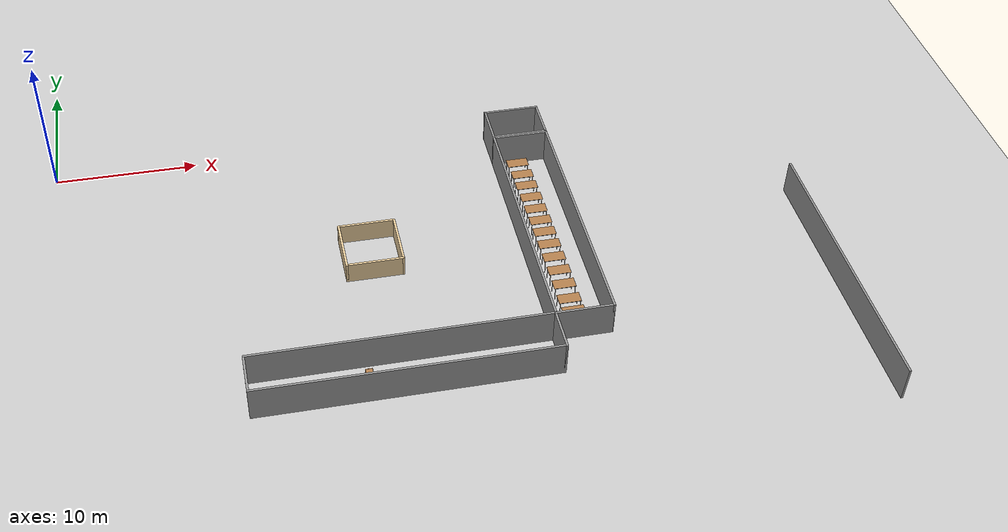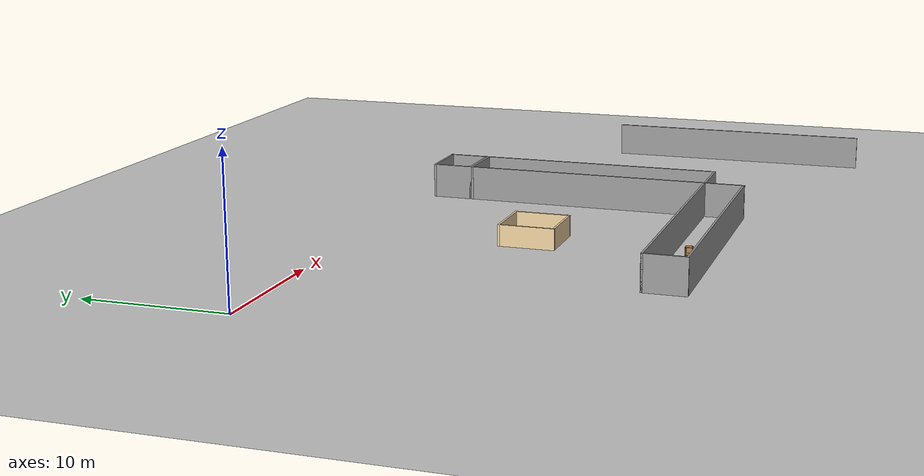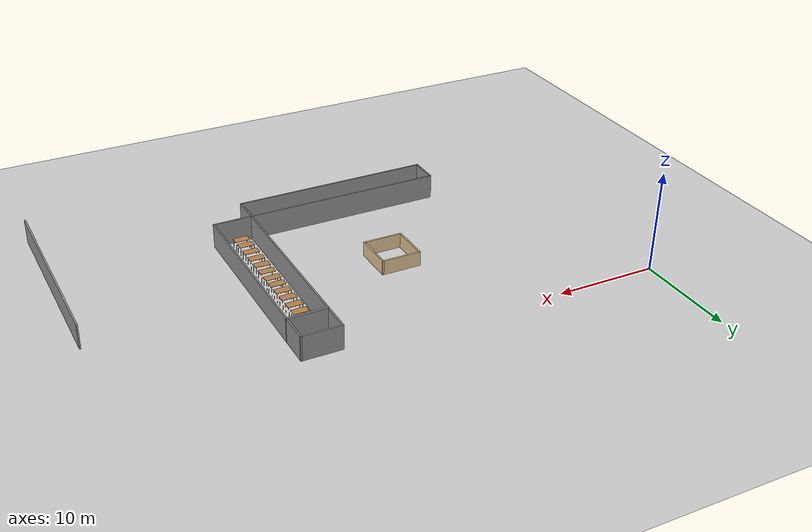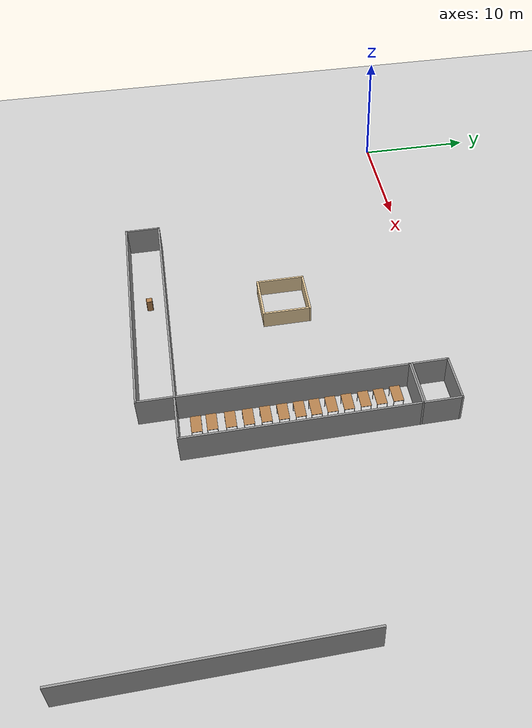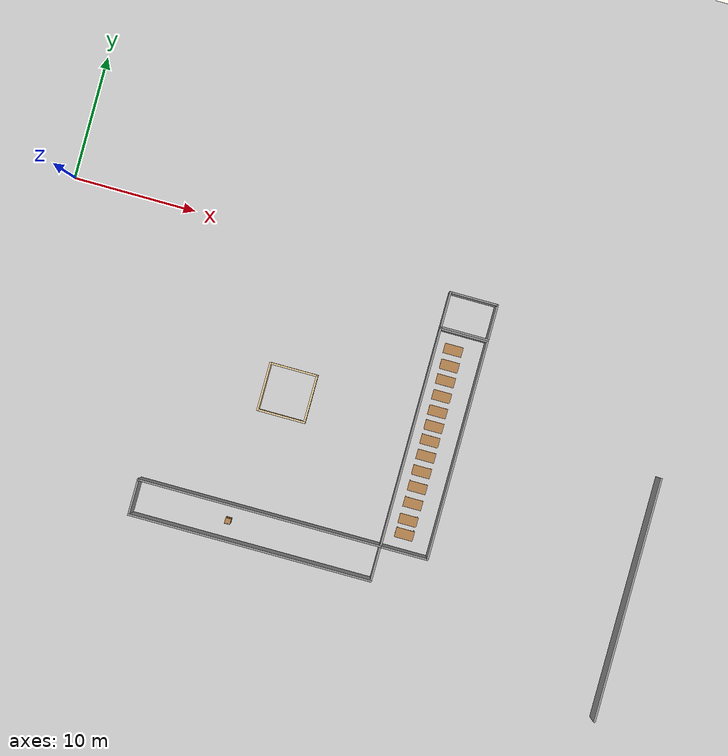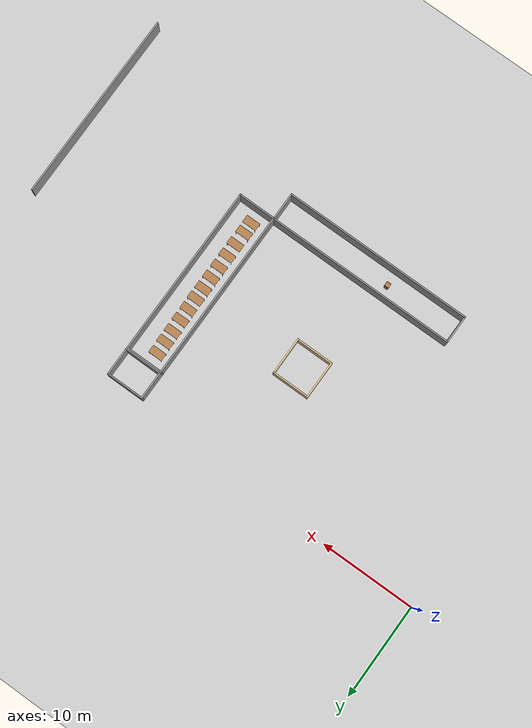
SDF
<sdf version="1.6">
 <world name="default">
  <model name="ground_plane">
   <static>1</static>
   <link name="link">
    <collision name="collision">
     <geometry><plane><normal>0 0 1</normal><size>105 105</size></plane></geometry>
     <surface>
      <contact><collide_bitmask>65535</collide_bitmask></contact>
      <friction><ode><mu>100</mu><mu2>50</mu2></ode></friction>
     </surface>
    </collision>
    <visual name="visual">
     <cast_shadows>0</cast_shadows>
     <geometry><plane><normal>0 0 1</normal><size>105 105</size></plane></geometry>
     <material>
      <script><uri>file://media/materials/scripts/gazebo.material</uri><name>Gazebo/Grey</name></script>
     </material>
    </visual>
   </link>
  </model>
  <model name="wall_v20m_3">
   <pose>51.4198 -20.719 0 0 -0 0</pose>
   <link name="Wall_35">
    <collision name="Wall_35_Collision">
     <geometry><box><size>20 0.15 2.5</size></box></geometry>
     <pose>0 0 1.25 0 -0 0</pose>
    </collision>
    <visual name="Wall_35_Visual">
     <pose>0 0 1.25 0 -0 0</pose>
     <geometry><box><size>20 0.15 2.5</size></box></geometry>
     <material>
      <script><uri>file://media/materials/scripts/gazebo.material</uri><name>Gazebo/Grey</name></script>
      <ambient>1 1 1 1</ambient>
     </material>
     <meta><layer>0</layer></meta>
    </visual>
    <pose>0 -0 0 0 -0 -1.5708</pose>
   </link>
   <static>1</static>
  </model>
  <model name="base3x20_3">
   <pose>21.5045 -23.229 0 0 -0 0</pose>
   <link name="Wall_16">
    <collision name="Wall_16_Collision">
     <geometry><box><size>3 0.15 2.5</size></box></geometry>
     <pose>0 0 1.25 0 -0 0</pose>
    </collision>
    <visual name="Wall_16_Visual">
     <pose>0 0 1.25 0 -0 0</pose>
     <geometry><box><size>3 0.15 2.5</size></box></geometry>
     <material>
      <script><uri>file://media/materials/scripts/gazebo.material</uri><name>Gazebo/Grey</name></script>
      <ambient>1 1 1 1</ambient>
     </material>
     <meta><layer>0</layer></meta>
    </visual>
    <pose>-9.925 -0 0 0 -0 -1.5708</pose>
   </link>
   <link name="Wall_17">
    <collision name="Wall_17_Collision">
     <geometry><box><size>20 0.15 2.5</size></box></geometry>
     <pose>0 0 1.25 0 -0 0</pose>
    </collision>
    <visual name="Wall_17_Visual">
     <pose>0 0 1.25 0 -0 0</pose>
     <geometry><box><size>20 0.15 2.5</size></box></geometry>
     <material>
      <script><uri>file://media/materials/scripts/gazebo.material</uri><name>Gazebo/Grey</name></script>
      <ambient>1 1 1 1</ambient>
     </material>
     <meta><layer>0</layer></meta>
    </visual>
    <pose>-0 -1.425 0 0 -0 0</pose>
   </link>
   <link name="Wall_18">
    <collision name="Wall_18_Collision">
     <geometry><box><size>3 0.15 2.5</size></box></geometry>
     <pose>0 0 1.25 0 -0 0</pose>
    </collision>
    <visual name="Wall_18_Visual">
     <pose>0 0 1.25 0 -0 0</pose>
     <geometry><box><size>3 0.15 2.5</size></box></geometry>
     <material>
      <script><uri>file://media/materials/scripts/gazebo.material</uri><name>Gazebo/Grey</name></script>
      <ambient>1 1 1 1</ambient>
     </material>
     <meta><layer>0</layer></meta>
    </visual>
    <pose>9.925 -0 0 0 -0 1.5708</pose>
   </link>
   <link name="Wall_19">
    <collision name="Wall_19_Collision">
     <geometry><box><size>20 0.15 2.5</size></box></geometry>
     <pose>0 0 1.25 0 -0 0</pose>
    </collision>
    <visual name="Wall_19_Visual">
     <pose>0 0 1.25 0 -0 0</pose>
     <geometry><box><size>20 0.15 2.5</size></box></geometry>
     <material>
      <script><uri>file://media/materials/scripts/gazebo.material</uri><name>Gazebo/Grey</name></script>
      <ambient>1 1 1 1</ambient>
     </material>
     <meta><layer>0</layer></meta>
    </visual>
    <pose>-0 1.425 0 0 -0 3.14159</pose>
   </link>
   <static>1</static>
  </model>
  <model name="base18x4_5">
   <pose>33.3746 -12.8976 0 0 -0 0</pose>
   <link name="Wall_6">
    <collision name="Wall_6_Collision">
     <geometry><box><size>18 0.15 2.5</size></box></geometry>
     <pose>0 0 1.25 0 -0 0</pose>
    </collision>
    <visual name="Wall_6_Visual">
     <pose>0 0 1.25 0 -0 0</pose>
     <geometry><box><size>18 0.15 2.5</size></box></geometry>
     <material>
      <script><uri>file://media/materials/scripts/gazebo.material</uri><name>Gazebo/Grey</name></script>
      <ambient>1 1 1 1</ambient>
     </material>
     <meta><layer>0</layer></meta>
    </visual>
    <pose>-1.925 0 0 0 -0 -1.5708</pose>
   </link>
   <link name="Wall_7">
    <collision name="Wall_7_Collision">
     <geometry><box><size>4 0.15 2.5</size></box></geometry>
     <pose>0 0 1.25 0 -0 0</pose>
    </collision>
    <visual name="Wall_7_Visual">
     <pose>0 0 1.25 0 -0 0</pose>
     <geometry><box><size>4 0.15 2.5</size></box></geometry>
     <material>
      <script><uri>file://media/materials/scripts/gazebo.material</uri><name>Gazebo/Grey</name></script>
      <ambient>1 1 1 1</ambient>
     </material>
     <meta><layer>0</layer></meta>
    </visual>
    <pose>0 -8.925 0 0 -0 0</pose>
   </link>
   <link name="Wall_8">
    <collision name="Wall_8_Collision">
     <geometry><box><size>18 0.15 2.5</size></box></geometry>
     <pose>0 0 1.25 0 -0 0</pose>
    </collision>
    <visual name="Wall_8_Visual">
     <pose>0 0 1.25 0 -0 0</pose>
     <geometry><box><size>18 0.15 2.5</size></box></geometry>
     <material>
      <script><uri>file://media/materials/scripts/gazebo.material</uri><name>Gazebo/Grey</name></script>
      <ambient>1 1 1 1</ambient>
     </material>
     <meta><layer>0</layer></meta>
    </visual>
    <pose>1.925 0 0 0 -0 1.5708</pose>
   </link>
   <link name="Wall_9">
    <collision name="Wall_9_Collision">
     <geometry><box><size>4 0.15 2.5</size></box></geometry>
     <pose>0 0 1.25 0 -0 0</pose>
    </collision>
    <visual name="Wall_9_Visual">
     <pose>0 0 1.25 0 -0 0</pose>
     <geometry><box><size>4 0.15 2.5</size></box></geometry>
     <material>
      <script><uri>file://media/materials/scripts/gazebo.material</uri><name>Gazebo/Grey</name></script>
      <ambient>1 1 1 1</ambient>
     </material>
     <meta><layer>0</layer></meta>
    </visual>
    <pose>0 8.925 0 0 -0 3.14159</pose>
   </link>
   <static>1</static>
  </model>
  <model name="base3x4_74">
   <pose>33.377 -2.40049 0 0 -0 0</pose>
   <link name="Wall_18">
    <collision name="Wall_18_Collision">
     <geometry><box><size>3 0.15 2.5</size></box></geometry>
     <pose>0 0 1.25 0 -0 0</pose>
    </collision>
    <visual name="Wall_18_Visual">
     <pose>0 0 1.25 0 -0 0</pose>
     <geometry><box><size>3 0.15 2.5</size></box></geometry>
     <material>
      <script><uri>file://media/materials/scripts/gazebo.material</uri><name>Gazebo/Grey</name></script>
      <ambient>1 1 1 1</ambient>
     </material>
     <meta><layer>0</layer></meta>
    </visual>
    <pose>-1.925 -0 0 0 -0 -1.5708</pose>
   </link>
   <link name="Wall_19">
    <collision name="Wall_19_Collision">
     <geometry><box><size>4 0.15 2.5</size></box></geometry>
     <pose>0 0 1.25 0 -0 0</pose>
    </collision>
    <visual name="Wall_19_Visual">
     <pose>0 0 1.25 0 -0 0</pose>
     <geometry><box><size>4 0.15 2.5</size></box></geometry>
     <material>
      <script><uri>file://media/materials/scripts/gazebo.material</uri><name>Gazebo/Grey</name></script>
      <ambient>1 1 1 1</ambient>
     </material>
     <meta><layer>0</layer></meta>
    </visual>
    <pose>-0 -1.425 0 0 -0 0</pose>
   </link>
   <link name="Wall_20">
    <collision name="Wall_20_Collision">
     <geometry><box><size>3 0.15 2.5</size></box></geometry>
     <pose>0 0 1.25 0 -0 0</pose>
    </collision>
    <visual name="Wall_20_Visual">
     <pose>0 0 1.25 0 -0 0</pose>
     <geometry><box><size>3 0.15 2.5</size></box></geometry>
     <material>
      <script><uri>file://media/materials/scripts/gazebo.material</uri><name>Gazebo/Grey</name></script>
      <ambient>1 1 1 1</ambient>
     </material>
     <meta><layer>0</layer></meta>
    </visual>
    <pose>1.925 -0 0 0 -0 1.5708</pose>
   </link>
   <link name="Wall_21">
    <collision name="Wall_21_Collision">
     <geometry><box><size>4 0.15 2.5</size></box></geometry>
     <pose>0 0 1.25 0 -0 0</pose>
    </collision>
    <visual name="Wall_21_Visual">
     <pose>0 0 1.25 0 -0 0</pose>
     <geometry><box><size>4 0.15 2.5</size></box></geometry>
     <material>
      <script><uri>file://media/materials/scripts/gazebo.material</uri><name>Gazebo/Grey</name></script>
      <ambient>1 1 1 1</ambient>
     </material>
     <meta><layer>0</layer></meta>
    </visual>
    <pose>-0 1.425 0 0 -0 3.14159</pose>
   </link>
   <static>1</static>
  </model>
  <model name="table">
   <static>1</static>
   <link name="link">
    <collision name="surface">
     <pose>0 0 1 0 -0 0</pose>
     <geometry><box><size>1.5 0.8 0.03</size></box></geometry>
     <surface><friction><ode><mu>0.6</mu><mu2>0.6</mu2></ode></friction></surface>
    </collision>
    <visual name="visual1">
     <pose>0 0 1 0 -0 0</pose>
     <geometry><box><size>1.5 0.8 0.03</size></box></geometry>
     <material>
      <script><uri>file://media/materials/scripts/gazebo.material</uri><name>Gazebo/Wood</name></script>
     </material>
    </visual>
    <collision name="front_left_leg">
     <pose>0.68 0.38 0.5 0 -0 0</pose>
     <geometry><cylinder><radius>0.02</radius><length>1</length></cylinder></geometry>
    </collision>
    <visual name="front_left_leg">
     <pose>0.68 0.38 0.5 0 -0 0</pose>
     <geometry><cylinder><radius>0.02</radius><length>1</length></cylinder></geometry>
     <material>
      <script><uri>file://media/materials/scripts/gazebo.material</uri><name>Gazebo/Grey</name></script>
     </material>
    </visual>
    <collision name="front_right_leg">
     <pose>0.68 -0.38 0.5 0 -0 0</pose>
     <geometry><cylinder><radius>0.02</radius><length>1</length></cylinder></geometry>
    </collision>
    <visual name="front_right_leg">
     <pose>0.68 -0.38 0.5 0 -0 0</pose>
     <geometry><cylinder><radius>0.02</radius><length>1</length></cylinder></geometry>
     <material>
      <script><uri>file://media/materials/scripts/gazebo.material</uri><name>Gazebo/Grey</name></script>
     </material>
    </visual>
    <collision name="back_right_leg">
     <pose>-0.68 -0.38 0.5 0 -0 0</pose>
     <geometry><cylinder><radius>0.02</radius><length>1</length></cylinder></geometry>
    </collision>
    <visual name="back_right_leg">
     <pose>-0.68 -0.38 0.5 0 -0 0</pose>
     <geometry><cylinder><radius>0.02</radius><length>1</length></cylinder></geometry>
     <material>
      <script><uri>file://media/materials/scripts/gazebo.material</uri><name>Gazebo/Grey</name></script>
     </material>
    </visual>
    <collision name="back_left_leg">
     <pose>-0.68 0.38 0.5 0 -0 0</pose>
     <geometry><cylinder><radius>0.02</radius><length>1</length></cylinder></geometry>
    </collision>
    <visual name="back_left_leg">
     <pose>-0.68 0.38 0.5 0 -0 0</pose>
     <geometry><cylinder><radius>0.02</radius><length>1</length></cylinder></geometry>
     <material>
      <script><uri>file://media/materials/scripts/gazebo.material</uri><name>Gazebo/Grey</name></script>
     </material>
    </visual>
   </link>
   <pose>33.0718 -20.4788 0 0 -0 0</pose>
  </model>
  <model name="table_0">
   <static>1</static>
   <link name="link">
    <collision name="surface">
     <pose>0 0 1 0 -0 0</pose>
     <geometry><box><size>1.5 0.8 0.03</size></box></geometry>
     <surface><friction><ode><mu>0.6</mu><mu2>0.6</mu2></ode></friction></surface>
    </collision>
    <visual name="visual1">
     <pose>0 0 1 0 -0 0</pose>
     <geometry><box><size>1.5 0.8 0.03</size></box></geometry>
     <material>
      <script><uri>file://media/materials/scripts/gazebo.material</uri><name>Gazebo/Wood</name></script>
     </material>
    </visual>
    <collision name="front_left_leg">
     <pose>0.68 0.38 0.5 0 -0 0</pose>
     <geometry><cylinder><radius>0.02</radius><length>1</length></cylinder></geometry>
    </collision>
    <visual name="front_left_leg">
     <pose>0.68 0.38 0.5 0 -0 0</pose>
     <geometry><cylinder><radius>0.02</radius><length>1</length></cylinder></geometry>
     <material>
      <script><uri>file://media/materials/scripts/gazebo.material</uri><name>Gazebo/Grey</name></script>
     </material>
    </visual>
    <collision name="front_right_leg">
     <pose>0.68 -0.38 0.5 0 -0 0</pose>
     <geometry><cylinder><radius>0.02</radius><length>1</length></cylinder></geometry>
    </collision>
    <visual name="front_right_leg">
     <pose>0.68 -0.38 0.5 0 -0 0</pose>
     <geometry><cylinder><radius>0.02</radius><length>1</length></cylinder></geometry>
     <material>
      <script><uri>file://media/materials/scripts/gazebo.material</uri><name>Gazebo/Grey</name></script>
     </material>
    </visual>
    <collision name="back_right_leg">
     <pose>-0.68 -0.38 0.5 0 -0 0</pose>
     <geometry><cylinder><radius>0.02</radius><length>1</length></cylinder></geometry>
    </collision>
    <visual name="back_right_leg">
     <pose>-0.68 -0.38 0.5 0 -0 0</pose>
     <geometry><cylinder><radius>0.02</radius><length>1</length></cylinder></geometry>
     <material>
      <script><uri>file://media/materials/scripts/gazebo.material</uri><name>Gazebo/Grey</name></script>
     </material>
    </visual>
    <collision name="back_left_leg">
     <pose>-0.68 0.38 0.5 0 -0 0</pose>
     <geometry><cylinder><radius>0.02</radius><length>1</length></cylinder></geometry>
    </collision>
    <visual name="back_left_leg">
     <pose>-0.68 0.38 0.5 0 -0 0</pose>
     <geometry><cylinder><radius>0.02</radius><length>1</length></cylinder></geometry>
     <material>
      <script><uri>file://media/materials/scripts/gazebo.material</uri><name>Gazebo/Grey</name></script>
     </material>
    </visual>
   </link>
   <pose>33.0586 -19.3271 0 0 -0 0</pose>
  </model>
  <model name="table_1">
   <static>1</static>
   <link name="link">
    <collision name="surface">
     <pose>0 0 1 0 -0 0</pose>
     <geometry><box><size>1.5 0.8 0.03</size></box></geometry>
     <surface><friction><ode><mu>0.6</mu><mu2>0.6</mu2></ode></friction></surface>
    </collision>
    <visual name="visual1">
     <pose>0 0 1 0 -0 0</pose>
     <geometry><box><size>1.5 0.8 0.03</size></box></geometry>
     <material>
      <script><uri>file://media/materials/scripts/gazebo.material</uri><name>Gazebo/Wood</name></script>
     </material>
    </visual>
    <collision name="front_left_leg">
     <pose>0.68 0.38 0.5 0 -0 0</pose>
     <geometry><cylinder><radius>0.02</radius><length>1</length></cylinder></geometry>
    </collision>
    <visual name="front_left_leg">
     <pose>0.68 0.38 0.5 0 -0 0</pose>
     <geometry><cylinder><radius>0.02</radius><length>1</length></cylinder></geometry>
     <material>
      <script><uri>file://media/materials/scripts/gazebo.material</uri><name>Gazebo/Grey</name></script>
     </material>
    </visual>
    <collision name="front_right_leg">
     <pose>0.68 -0.38 0.5 0 -0 0</pose>
     <geometry><cylinder><radius>0.02</radius><length>1</length></cylinder></geometry>
    </collision>
    <visual name="front_right_leg">
     <pose>0.68 -0.38 0.5 0 -0 0</pose>
     <geometry><cylinder><radius>0.02</radius><length>1</length></cylinder></geometry>
     <material>
      <script><uri>file://media/materials/scripts/gazebo.material</uri><name>Gazebo/Grey</name></script>
     </material>
    </visual>
    <collision name="back_right_leg">
     <pose>-0.68 -0.38 0.5 0 -0 0</pose>
     <geometry><cylinder><radius>0.02</radius><length>1</length></cylinder></geometry>
    </collision>
    <visual name="back_right_leg">
     <pose>-0.68 -0.38 0.5 0 -0 0</pose>
     <geometry><cylinder><radius>0.02</radius><length>1</length></cylinder></geometry>
     <material>
      <script><uri>file://media/materials/scripts/gazebo.material</uri><name>Gazebo/Grey</name></script>
     </material>
    </visual>
    <collision name="back_left_leg">
     <pose>-0.68 0.38 0.5 0 -0 0</pose>
     <geometry><cylinder><radius>0.02</radius><length>1</length></cylinder></geometry>
    </collision>
    <visual name="back_left_leg">
     <pose>-0.68 0.38 0.5 0 -0 0</pose>
     <geometry><cylinder><radius>0.02</radius><length>1</length></cylinder></geometry>
     <material>
      <script><uri>file://media/materials/scripts/gazebo.material</uri><name>Gazebo/Grey</name></script>
     </material>
    </visual>
   </link>
   <pose>33.0783 -17.9476 0 0 -0 0</pose>
  </model>
  <model name="table_2">
   <static>1</static>
   <link name="link">
    <collision name="surface">
     <pose>0 0 1 0 -0 0</pose>
     <geometry><box><size>1.5 0.8 0.03</size></box></geometry>
     <surface><friction><ode><mu>0.6</mu><mu2>0.6</mu2></ode></friction></surface>
    </collision>
    <visual name="visual1">
     <pose>0 0 1 0 -0 0</pose>
     <geometry><box><size>1.5 0.8 0.03</size></box></geometry>
     <material>
      <script><uri>file://media/materials/scripts/gazebo.material</uri><name>Gazebo/Wood</name></script>
     </material>
    </visual>
    <collision name="front_left_leg">
     <pose>0.68 0.38 0.5 0 -0 0</pose>
     <geometry><cylinder><radius>0.02</radius><length>1</length></cylinder></geometry>
    </collision>
    <visual name="front_left_leg">
     <pose>0.68 0.38 0.5 0 -0 0</pose>
     <geometry><cylinder><radius>0.02</radius><length>1</length></cylinder></geometry>
     <material>
      <script><uri>file://media/materials/scripts/gazebo.material</uri><name>Gazebo/Grey</name></script>
     </material>
    </visual>
    <collision name="front_right_leg">
     <pose>0.68 -0.38 0.5 0 -0 0</pose>
     <geometry><cylinder><radius>0.02</radius><length>1</length></cylinder></geometry>
    </collision>
    <visual name="front_right_leg">
     <pose>0.68 -0.38 0.5 0 -0 0</pose>
     <geometry><cylinder><radius>0.02</radius><length>1</length></cylinder></geometry>
     <material>
      <script><uri>file://media/materials/scripts/gazebo.material</uri><name>Gazebo/Grey</name></script>
     </material>
    </visual>
    <collision name="back_right_leg">
     <pose>-0.68 -0.38 0.5 0 -0 0</pose>
     <geometry><cylinder><radius>0.02</radius><length>1</length></cylinder></geometry>
    </collision>
    <visual name="back_right_leg">
     <pose>-0.68 -0.38 0.5 0 -0 0</pose>
     <geometry><cylinder><radius>0.02</radius><length>1</length></cylinder></geometry>
     <material>
      <script><uri>file://media/materials/scripts/gazebo.material</uri><name>Gazebo/Grey</name></script>
     </material>
    </visual>
    <collision name="back_left_leg">
     <pose>-0.68 0.38 0.5 0 -0 0</pose>
     <geometry><cylinder><radius>0.02</radius><length>1</length></cylinder></geometry>
    </collision>
    <visual name="back_left_leg">
     <pose>-0.68 0.38 0.5 0 -0 0</pose>
     <geometry><cylinder><radius>0.02</radius><length>1</length></cylinder></geometry>
     <material>
      <script><uri>file://media/materials/scripts/gazebo.material</uri><name>Gazebo/Grey</name></script>
     </material>
    </visual>
   </link>
   <pose>33.0811 -16.621 0 0 -0 0</pose>
  </model>
  <model name="table_3">
   <static>1</static>
   <link name="link">
    <collision name="surface">
     <pose>0 0 1 0 -0 0</pose>
     <geometry><box><size>1.5 0.8 0.03</size></box></geometry>
     <surface><friction><ode><mu>0.6</mu><mu2>0.6</mu2></ode></friction></surface>
    </collision>
    <visual name="visual1">
     <pose>0 0 1 0 -0 0</pose>
     <geometry><box><size>1.5 0.8 0.03</size></box></geometry>
     <material>
      <script><uri>file://media/materials/scripts/gazebo.material</uri><name>Gazebo/Wood</name></script>
     </material>
    </visual>
    <collision name="front_left_leg">
     <pose>0.68 0.38 0.5 0 -0 0</pose>
     <geometry><cylinder><radius>0.02</radius><length>1</length></cylinder></geometry>
    </collision>
    <visual name="front_left_leg">
     <pose>0.68 0.38 0.5 0 -0 0</pose>
     <geometry><cylinder><radius>0.02</radius><length>1</length></cylinder></geometry>
     <material>
      <script><uri>file://media/materials/scripts/gazebo.material</uri><name>Gazebo/Grey</name></script>
     </material>
    </visual>
    <collision name="front_right_leg">
     <pose>0.68 -0.38 0.5 0 -0 0</pose>
     <geometry><cylinder><radius>0.02</radius><length>1</length></cylinder></geometry>
    </collision>
    <visual name="front_right_leg">
     <pose>0.68 -0.38 0.5 0 -0 0</pose>
     <geometry><cylinder><radius>0.02</radius><length>1</length></cylinder></geometry>
     <material>
      <script><uri>file://media/materials/scripts/gazebo.material</uri><name>Gazebo/Grey</name></script>
     </material>
    </visual>
    <collision name="back_right_leg">
     <pose>-0.68 -0.38 0.5 0 -0 0</pose>
     <geometry><cylinder><radius>0.02</radius><length>1</length></cylinder></geometry>
    </collision>
    <visual name="back_right_leg">
     <pose>-0.68 -0.38 0.5 0 -0 0</pose>
     <geometry><cylinder><radius>0.02</radius><length>1</length></cylinder></geometry>
     <material>
      <script><uri>file://media/materials/scripts/gazebo.material</uri><name>Gazebo/Grey</name></script>
     </material>
    </visual>
    <collision name="back_left_leg">
     <pose>-0.68 0.38 0.5 0 -0 0</pose>
     <geometry><cylinder><radius>0.02</radius><length>1</length></cylinder></geometry>
    </collision>
    <visual name="back_left_leg">
     <pose>-0.68 0.38 0.5 0 -0 0</pose>
     <geometry><cylinder><radius>0.02</radius><length>1</length></cylinder></geometry>
     <material>
      <script><uri>file://media/materials/scripts/gazebo.material</uri><name>Gazebo/Grey</name></script>
     </material>
    </visual>
   </link>
   <pose>33.0661 -15.3115 0 0 -0 0</pose>
  </model>
  <model name="table_4">
   <static>1</static>
   <link name="link">
    <collision name="surface">
     <pose>0 0 1 0 -0 0</pose>
     <geometry><box><size>1.5 0.8 0.03</size></box></geometry>
     <surface><friction><ode><mu>0.6</mu><mu2>0.6</mu2></ode></friction></surface>
    </collision>
    <visual name="visual1">
     <pose>0 0 1 0 -0 0</pose>
     <geometry><box><size>1.5 0.8 0.03</size></box></geometry>
     <material>
      <script><uri>file://media/materials/scripts/gazebo.material</uri><name>Gazebo/Wood</name></script>
     </material>
    </visual>
    <collision name="front_left_leg">
     <pose>0.68 0.38 0.5 0 -0 0</pose>
     <geometry><cylinder><radius>0.02</radius><length>1</length></cylinder></geometry>
    </collision>
    <visual name="front_left_leg">
     <pose>0.68 0.38 0.5 0 -0 0</pose>
     <geometry><cylinder><radius>0.02</radius><length>1</length></cylinder></geometry>
     <material>
      <script><uri>file://media/materials/scripts/gazebo.material</uri><name>Gazebo/Grey</name></script>
     </material>
    </visual>
    <collision name="front_right_leg">
     <pose>0.68 -0.38 0.5 0 -0 0</pose>
     <geometry><cylinder><radius>0.02</radius><length>1</length></cylinder></geometry>
    </collision>
    <visual name="front_right_leg">
     <pose>0.68 -0.38 0.5 0 -0 0</pose>
     <geometry><cylinder><radius>0.02</radius><length>1</length></cylinder></geometry>
     <material>
      <script><uri>file://media/materials/scripts/gazebo.material</uri><name>Gazebo/Grey</name></script>
     </material>
    </visual>
    <collision name="back_right_leg">
     <pose>-0.68 -0.38 0.5 0 -0 0</pose>
     <geometry><cylinder><radius>0.02</radius><length>1</length></cylinder></geometry>
    </collision>
    <visual name="back_right_leg">
     <pose>-0.68 -0.38 0.5 0 -0 0</pose>
     <geometry><cylinder><radius>0.02</radius><length>1</length></cylinder></geometry>
     <material>
      <script><uri>file://media/materials/scripts/gazebo.material</uri><name>Gazebo/Grey</name></script>
     </material>
    </visual>
    <collision name="back_left_leg">
     <pose>-0.68 0.38 0.5 0 -0 0</pose>
     <geometry><cylinder><radius>0.02</radius><length>1</length></cylinder></geometry>
    </collision>
    <visual name="back_left_leg">
     <pose>-0.68 0.38 0.5 0 -0 0</pose>
     <geometry><cylinder><radius>0.02</radius><length>1</length></cylinder></geometry>
     <material>
      <script><uri>file://media/materials/scripts/gazebo.material</uri><name>Gazebo/Grey</name></script>
     </material>
    </visual>
   </link>
   <pose>33.068 -14.0197 0 0 -0 0</pose>
  </model>
  <model name="table_5">
   <static>1</static>
   <link name="link">
    <collision name="surface">
     <pose>0 0 1 0 -0 0</pose>
     <geometry><box><size>1.5 0.8 0.03</size></box></geometry>
     <surface><friction><ode><mu>0.6</mu><mu2>0.6</mu2></ode></friction></surface>
    </collision>
    <visual name="visual1">
     <pose>0 0 1 0 -0 0</pose>
     <geometry><box><size>1.5 0.8 0.03</size></box></geometry>
     <material>
      <script><uri>file://media/materials/scripts/gazebo.material</uri><name>Gazebo/Wood</name></script>
     </material>
    </visual>
    <collision name="front_left_leg">
     <pose>0.68 0.38 0.5 0 -0 0</pose>
     <geometry><cylinder><radius>0.02</radius><length>1</length></cylinder></geometry>
    </collision>
    <visual name="front_left_leg">
     <pose>0.68 0.38 0.5 0 -0 0</pose>
     <geometry><cylinder><radius>0.02</radius><length>1</length></cylinder></geometry>
     <material>
      <script><uri>file://media/materials/scripts/gazebo.material</uri><name>Gazebo/Grey</name></script>
     </material>
    </visual>
    <collision name="front_right_leg">
     <pose>0.68 -0.38 0.5 0 -0 0</pose>
     <geometry><cylinder><radius>0.02</radius><length>1</length></cylinder></geometry>
    </collision>
    <visual name="front_right_leg">
     <pose>0.68 -0.38 0.5 0 -0 0</pose>
     <geometry><cylinder><radius>0.02</radius><length>1</length></cylinder></geometry>
     <material>
      <script><uri>file://media/materials/scripts/gazebo.material</uri><name>Gazebo/Grey</name></script>
     </material>
    </visual>
    <collision name="back_right_leg">
     <pose>-0.68 -0.38 0.5 0 -0 0</pose>
     <geometry><cylinder><radius>0.02</radius><length>1</length></cylinder></geometry>
    </collision>
    <visual name="back_right_leg">
     <pose>-0.68 -0.38 0.5 0 -0 0</pose>
     <geometry><cylinder><radius>0.02</radius><length>1</length></cylinder></geometry>
     <material>
      <script><uri>file://media/materials/scripts/gazebo.material</uri><name>Gazebo/Grey</name></script>
     </material>
    </visual>
    <collision name="back_left_leg">
     <pose>-0.68 0.38 0.5 0 -0 0</pose>
     <geometry><cylinder><radius>0.02</radius><length>1</length></cylinder></geometry>
    </collision>
    <visual name="back_left_leg">
     <pose>-0.68 0.38 0.5 0 -0 0</pose>
     <geometry><cylinder><radius>0.02</radius><length>1</length></cylinder></geometry>
     <material>
      <script><uri>file://media/materials/scripts/gazebo.material</uri><name>Gazebo/Grey</name></script>
     </material>
    </visual>
   </link>
   <pose>33.0548 -12.7631 0 0 -0 0</pose>
  </model>
  <model name="table_6">
   <static>1</static>
   <link name="link">
    <collision name="surface">
     <pose>0 0 1 0 -0 0</pose>
     <geometry><box><size>1.5 0.8 0.03</size></box></geometry>
     <surface><friction><ode><mu>0.6</mu><mu2>0.6</mu2></ode></friction></surface>
    </collision>
    <visual name="visual1">
     <pose>0 0 1 0 -0 0</pose>
     <geometry><box><size>1.5 0.8 0.03</size></box></geometry>
     <material>
      <script><uri>file://media/materials/scripts/gazebo.material</uri><name>Gazebo/Wood</name></script>
     </material>
    </visual>
    <collision name="front_left_leg">
     <pose>0.68 0.38 0.5 0 -0 0</pose>
     <geometry><cylinder><radius>0.02</radius><length>1</length></cylinder></geometry>
    </collision>
    <visual name="front_left_leg">
     <pose>0.68 0.38 0.5 0 -0 0</pose>
     <geometry><cylinder><radius>0.02</radius><length>1</length></cylinder></geometry>
     <material>
      <script><uri>file://media/materials/scripts/gazebo.material</uri><name>Gazebo/Grey</name></script>
     </material>
    </visual>
    <collision name="front_right_leg">
     <pose>0.68 -0.38 0.5 0 -0 0</pose>
     <geometry><cylinder><radius>0.02</radius><length>1</length></cylinder></geometry>
    </collision>
    <visual name="front_right_leg">
     <pose>0.68 -0.38 0.5 0 -0 0</pose>
     <geometry><cylinder><radius>0.02</radius><length>1</length></cylinder></geometry>
     <material>
      <script><uri>file://media/materials/scripts/gazebo.material</uri><name>Gazebo/Grey</name></script>
     </material>
    </visual>
    <collision name="back_right_leg">
     <pose>-0.68 -0.38 0.5 0 -0 0</pose>
     <geometry><cylinder><radius>0.02</radius><length>1</length></cylinder></geometry>
    </collision>
    <visual name="back_right_leg">
     <pose>-0.68 -0.38 0.5 0 -0 0</pose>
     <geometry><cylinder><radius>0.02</radius><length>1</length></cylinder></geometry>
     <material>
      <script><uri>file://media/materials/scripts/gazebo.material</uri><name>Gazebo/Grey</name></script>
     </material>
    </visual>
    <collision name="back_left_leg">
     <pose>-0.68 0.38 0.5 0 -0 0</pose>
     <geometry><cylinder><radius>0.02</radius><length>1</length></cylinder></geometry>
    </collision>
    <visual name="back_left_leg">
     <pose>-0.68 0.38 0.5 0 -0 0</pose>
     <geometry><cylinder><radius>0.02</radius><length>1</length></cylinder></geometry>
     <material>
      <script><uri>file://media/materials/scripts/gazebo.material</uri><name>Gazebo/Grey</name></script>
     </material>
    </visual>
   </link>
   <pose>33.0586 -11.5759 0 0 -0 0</pose>
  </model>
  <model name="table_7">
   <static>1</static>
   <link name="link">
    <collision name="surface">
     <pose>0 0 1 0 -0 0</pose>
     <geometry><box><size>1.5 0.8 0.03</size></box></geometry>
     <surface><friction><ode><mu>0.6</mu><mu2>0.6</mu2></ode></friction></surface>
    </collision>
    <visual name="visual1">
     <pose>0 0 1 0 -0 0</pose>
     <geometry><box><size>1.5 0.8 0.03</size></box></geometry>
     <material>
      <script><uri>file://media/materials/scripts/gazebo.material</uri><name>Gazebo/Wood</name></script>
     </material>
    </visual>
    <collision name="front_left_leg">
     <pose>0.68 0.38 0.5 0 -0 0</pose>
     <geometry><cylinder><radius>0.02</radius><length>1</length></cylinder></geometry>
    </collision>
    <visual name="front_left_leg">
     <pose>0.68 0.38 0.5 0 -0 0</pose>
     <geometry><cylinder><radius>0.02</radius><length>1</length></cylinder></geometry>
     <material>
      <script><uri>file://media/materials/scripts/gazebo.material</uri><name>Gazebo/Grey</name></script>
     </material>
    </visual>
    <collision name="front_right_leg">
     <pose>0.68 -0.38 0.5 0 -0 0</pose>
     <geometry><cylinder><radius>0.02</radius><length>1</length></cylinder></geometry>
    </collision>
    <visual name="front_right_leg">
     <pose>0.68 -0.38 0.5 0 -0 0</pose>
     <geometry><cylinder><radius>0.02</radius><length>1</length></cylinder></geometry>
     <material>
      <script><uri>file://media/materials/scripts/gazebo.material</uri><name>Gazebo/Grey</name></script>
     </material>
    </visual>
    <collision name="back_right_leg">
     <pose>-0.68 -0.38 0.5 0 -0 0</pose>
     <geometry><cylinder><radius>0.02</radius><length>1</length></cylinder></geometry>
    </collision>
    <visual name="back_right_leg">
     <pose>-0.68 -0.38 0.5 0 -0 0</pose>
     <geometry><cylinder><radius>0.02</radius><length>1</length></cylinder></geometry>
     <material>
      <script><uri>file://media/materials/scripts/gazebo.material</uri><name>Gazebo/Grey</name></script>
     </material>
    </visual>
    <collision name="back_left_leg">
     <pose>-0.68 0.38 0.5 0 -0 0</pose>
     <geometry><cylinder><radius>0.02</radius><length>1</length></cylinder></geometry>
    </collision>
    <visual name="back_left_leg">
     <pose>-0.68 0.38 0.5 0 -0 0</pose>
     <geometry><cylinder><radius>0.02</radius><length>1</length></cylinder></geometry>
     <material>
      <script><uri>file://media/materials/scripts/gazebo.material</uri><name>Gazebo/Grey</name></script>
     </material>
    </visual>
   </link>
   <pose>33.0266 -10.3543 0 0 -0 0</pose>
  </model>
  <model name="table_8">
   <static>1</static>
   <link name="link">
    <collision name="surface">
     <pose>0 0 1 0 -0 0</pose>
     <geometry><box><size>1.5 0.8 0.03</size></box></geometry>
     <surface><friction><ode><mu>0.6</mu><mu2>0.6</mu2></ode></friction></surface>
    </collision>
    <visual name="visual1">
     <pose>0 0 1 0 -0 0</pose>
     <geometry><box><size>1.5 0.8 0.03</size></box></geometry>
     <material>
      <script><uri>file://media/materials/scripts/gazebo.material</uri><name>Gazebo/Wood</name></script>
     </material>
    </visual>
    <collision name="front_left_leg">
     <pose>0.68 0.38 0.5 0 -0 0</pose>
     <geometry><cylinder><radius>0.02</radius><length>1</length></cylinder></geometry>
    </collision>
    <visual name="front_left_leg">
     <pose>0.68 0.38 0.5 0 -0 0</pose>
     <geometry><cylinder><radius>0.02</radius><length>1</length></cylinder></geometry>
     <material>
      <script><uri>file://media/materials/scripts/gazebo.material</uri><name>Gazebo/Grey</name></script>
     </material>
    </visual>
    <collision name="front_right_leg">
     <pose>0.68 -0.38 0.5 0 -0 0</pose>
     <geometry><cylinder><radius>0.02</radius><length>1</length></cylinder></geometry>
    </collision>
    <visual name="front_right_leg">
     <pose>0.68 -0.38 0.5 0 -0 0</pose>
     <geometry><cylinder><radius>0.02</radius><length>1</length></cylinder></geometry>
     <material>
      <script><uri>file://media/materials/scripts/gazebo.material</uri><name>Gazebo/Grey</name></script>
     </material>
    </visual>
    <collision name="back_right_leg">
     <pose>-0.68 -0.38 0.5 0 -0 0</pose>
     <geometry><cylinder><radius>0.02</radius><length>1</length></cylinder></geometry>
    </collision>
    <visual name="back_right_leg">
     <pose>-0.68 -0.38 0.5 0 -0 0</pose>
     <geometry><cylinder><radius>0.02</radius><length>1</length></cylinder></geometry>
     <material>
      <script><uri>file://media/materials/scripts/gazebo.material</uri><name>Gazebo/Grey</name></script>
     </material>
    </visual>
    <collision name="back_left_leg">
     <pose>-0.68 0.38 0.5 0 -0 0</pose>
     <geometry><cylinder><radius>0.02</radius><length>1</length></cylinder></geometry>
    </collision>
    <visual name="back_left_leg">
     <pose>-0.68 0.38 0.5 0 -0 0</pose>
     <geometry><cylinder><radius>0.02</radius><length>1</length></cylinder></geometry>
     <material>
      <script><uri>file://media/materials/scripts/gazebo.material</uri><name>Gazebo/Grey</name></script>
     </material>
    </visual>
   </link>
   <pose>33.0125 -9.09753 0 0 -0 0</pose>
  </model>
  <model name="table_9">
   <static>1</static>
   <link name="link">
    <collision name="surface">
     <pose>0 0 1 0 -0 0</pose>
     <geometry><box><size>1.5 0.8 0.03</size></box></geometry>
     <surface><friction><ode><mu>0.6</mu><mu2>0.6</mu2></ode></friction></surface>
    </collision>
    <visual name="visual1">
     <pose>0 0 1 0 -0 0</pose>
     <geometry><box><size>1.5 0.8 0.03</size></box></geometry>
     <material>
      <script><uri>file://media/materials/scripts/gazebo.material</uri><name>Gazebo/Wood</name></script>
     </material>
    </visual>
    <collision name="front_left_leg">
     <pose>0.68 0.38 0.5 0 -0 0</pose>
     <geometry><cylinder><radius>0.02</radius><length>1</length></cylinder></geometry>
    </collision>
    <visual name="front_left_leg">
     <pose>0.68 0.38 0.5 0 -0 0</pose>
     <geometry><cylinder><radius>0.02</radius><length>1</length></cylinder></geometry>
     <material>
      <script><uri>file://media/materials/scripts/gazebo.material</uri><name>Gazebo/Grey</name></script>
     </material>
    </visual>
    <collision name="front_right_leg">
     <pose>0.68 -0.38 0.5 0 -0 0</pose>
     <geometry><cylinder><radius>0.02</radius><length>1</length></cylinder></geometry>
    </collision>
    <visual name="front_right_leg">
     <pose>0.68 -0.38 0.5 0 -0 0</pose>
     <geometry><cylinder><radius>0.02</radius><length>1</length></cylinder></geometry>
     <material>
      <script><uri>file://media/materials/scripts/gazebo.material</uri><name>Gazebo/Grey</name></script>
     </material>
    </visual>
    <collision name="back_right_leg">
     <pose>-0.68 -0.38 0.5 0 -0 0</pose>
     <geometry><cylinder><radius>0.02</radius><length>1</length></cylinder></geometry>
    </collision>
    <visual name="back_right_leg">
     <pose>-0.68 -0.38 0.5 0 -0 0</pose>
     <geometry><cylinder><radius>0.02</radius><length>1</length></cylinder></geometry>
     <material>
      <script><uri>file://media/materials/scripts/gazebo.material</uri><name>Gazebo/Grey</name></script>
     </material>
    </visual>
    <collision name="back_left_leg">
     <pose>-0.68 0.38 0.5 0 -0 0</pose>
     <geometry><cylinder><radius>0.02</radius><length>1</length></cylinder></geometry>
    </collision>
    <visual name="back_left_leg">
     <pose>-0.68 0.38 0.5 0 -0 0</pose>
     <geometry><cylinder><radius>0.02</radius><length>1</length></cylinder></geometry>
     <material>
      <script><uri>file://media/materials/scripts/gazebo.material</uri><name>Gazebo/Grey</name></script>
     </material>
    </visual>
   </link>
   <pose>32.9806 -7.80617 0 0 -0 0</pose>
  </model>
  <model name="table_10">
   <static>1</static>
   <link name="link">
    <collision name="surface">
     <pose>0 0 1 0 -0 0</pose>
     <geometry><box><size>1.5 0.8 0.03</size></box></geometry>
     <surface><friction><ode><mu>0.6</mu><mu2>0.6</mu2></ode></friction></surface>
    </collision>
    <visual name="visual1">
     <pose>0 0 1 0 -0 0</pose>
     <geometry><box><size>1.5 0.8 0.03</size></box></geometry>
     <material>
      <script><uri>file://media/materials/scripts/gazebo.material</uri><name>Gazebo/Wood</name></script>
     </material>
    </visual>
    <collision name="front_left_leg">
     <pose>0.68 0.38 0.5 0 -0 0</pose>
     <geometry><cylinder><radius>0.02</radius><length>1</length></cylinder></geometry>
    </collision>
    <visual name="front_left_leg">
     <pose>0.68 0.38 0.5 0 -0 0</pose>
     <geometry><cylinder><radius>0.02</radius><length>1</length></cylinder></geometry>
     <material>
      <script><uri>file://media/materials/scripts/gazebo.material</uri><name>Gazebo/Grey</name></script>
     </material>
    </visual>
    <collision name="front_right_leg">
     <pose>0.68 -0.38 0.5 0 -0 0</pose>
     <geometry><cylinder><radius>0.02</radius><length>1</length></cylinder></geometry>
    </collision>
    <visual name="front_right_leg">
     <pose>0.68 -0.38 0.5 0 -0 0</pose>
     <geometry><cylinder><radius>0.02</radius><length>1</length></cylinder></geometry>
     <material>
      <script><uri>file://media/materials/scripts/gazebo.material</uri><name>Gazebo/Grey</name></script>
     </material>
    </visual>
    <collision name="back_right_leg">
     <pose>-0.68 -0.38 0.5 0 -0 0</pose>
     <geometry><cylinder><radius>0.02</radius><length>1</length></cylinder></geometry>
    </collision>
    <visual name="back_right_leg">
     <pose>-0.68 -0.38 0.5 0 -0 0</pose>
     <geometry><cylinder><radius>0.02</radius><length>1</length></cylinder></geometry>
     <material>
      <script><uri>file://media/materials/scripts/gazebo.material</uri><name>Gazebo/Grey</name></script>
     </material>
    </visual>
    <collision name="back_left_leg">
     <pose>-0.68 0.38 0.5 0 -0 0</pose>
     <geometry><cylinder><radius>0.02</radius><length>1</length></cylinder></geometry>
    </collision>
    <visual name="back_left_leg">
     <pose>-0.68 0.38 0.5 0 -0 0</pose>
     <geometry><cylinder><radius>0.02</radius><length>1</length></cylinder></geometry>
     <material>
      <script><uri>file://media/materials/scripts/gazebo.material</uri><name>Gazebo/Grey</name></script>
     </material>
    </visual>
   </link>
   <pose>32.9655 -6.58438 0 0 -0 0</pose>
  </model>
  <model name="table_11">
   <static>1</static>
   <link name="link">
    <collision name="surface">
     <pose>0 0 1 0 -0 0</pose>
     <geometry><box><size>1.5 0.8 0.03</size></box></geometry>
     <surface><friction><ode><mu>0.6</mu><mu2>0.6</mu2></ode></friction></surface>
    </collision>
    <visual name="visual1">
     <pose>0 0 1 0 -0 0</pose>
     <geometry><box><size>1.5 0.8 0.03</size></box></geometry>
     <material>
      <script><uri>file://media/materials/scripts/gazebo.material</uri><name>Gazebo/Wood</name></script>
     </material>
    </visual>
    <collision name="front_left_leg">
     <pose>0.68 0.38 0.5 0 -0 0</pose>
     <geometry><cylinder><radius>0.02</radius><length>1</length></cylinder></geometry>
    </collision>
    <visual name="front_left_leg">
     <pose>0.68 0.38 0.5 0 -0 0</pose>
     <geometry><cylinder><radius>0.02</radius><length>1</length></cylinder></geometry>
     <material>
      <script><uri>file://media/materials/scripts/gazebo.material</uri><name>Gazebo/Grey</name></script>
     </material>
    </visual>
    <collision name="front_right_leg">
     <pose>0.68 -0.38 0.5 0 -0 0</pose>
     <geometry><cylinder><radius>0.02</radius><length>1</length></cylinder></geometry>
    </collision>
    <visual name="front_right_leg">
     <pose>0.68 -0.38 0.5 0 -0 0</pose>
     <geometry><cylinder><radius>0.02</radius><length>1</length></cylinder></geometry>
     <material>
      <script><uri>file://media/materials/scripts/gazebo.material</uri><name>Gazebo/Grey</name></script>
     </material>
    </visual>
    <collision name="back_right_leg">
     <pose>-0.68 -0.38 0.5 0 -0 0</pose>
     <geometry><cylinder><radius>0.02</radius><length>1</length></cylinder></geometry>
    </collision>
    <visual name="back_right_leg">
     <pose>-0.68 -0.38 0.5 0 -0 0</pose>
     <geometry><cylinder><radius>0.02</radius><length>1</length></cylinder></geometry>
     <material>
      <script><uri>file://media/materials/scripts/gazebo.material</uri><name>Gazebo/Grey</name></script>
     </material>
    </visual>
    <collision name="back_left_leg">
     <pose>-0.68 0.38 0.5 0 -0 0</pose>
     <geometry><cylinder><radius>0.02</radius><length>1</length></cylinder></geometry>
    </collision>
    <visual name="back_left_leg">
     <pose>-0.68 0.38 0.5 0 -0 0</pose>
     <geometry><cylinder><radius>0.02</radius><length>1</length></cylinder></geometry>
     <material>
      <script><uri>file://media/materials/scripts/gazebo.material</uri><name>Gazebo/Grey</name></script>
     </material>
    </visual>
   </link>
   <pose>32.9166 -5.29279 0 0 -0 0</pose>
  </model>
  <model name="cabinet_1">
   <static>1</static>
   <link name="cabinet_bottom_plate">
    <inertial>
     <pose>0 0 -1 0 -0 0</pose>
     <inertia><ixx>2.05</ixx><ixy>0</ixy><ixz>0</ixz><iyy>2.05</iyy><iyz>0</iyz><izz>2.05</izz></inertia>
     <mass>25</mass>
    </inertial>
    <collision name="cabinet_bottom_plate_geom">
     <pose>0 0 0.01 0 -0 0</pose>
     <geometry><box><size>0.45 0.45 0.02</size></box></geometry>
    </collision>
    <visual name="cabinet_bottom_plate_geom_visual">
     <pose>0 0 0.01 0 -0 0</pose>
     <geometry><box><size>0.45 0.45 0.02</size></box></geometry>
     <material>
      <script><uri>file://media/materials/scripts/gazebo.material</uri><name>Gazebo/Wood</name></script>
     </material>
    </visual>
    <collision name="cabinet_bottom_plate_geom_cabinet_back_plate">
     <pose>0.235 0 0.51 0 -0 0</pose>
     <geometry><box><size>0.02 0.45 1.02</size></box></geometry>
    </collision>
    <visual name="cabinet_bottom_plate_geom_cabinet_back_plate_visual">
     <pose>0.235 0 0.51 0 -0 0</pose>
     <geometry><box><size>0.02 0.45 1.02</size></box></geometry>
     <material>
      <script><uri>file://media/materials/scripts/gazebo.material</uri><name>Gazebo/Wood</name></script>
     </material>
    </visual>
    <collision name="cabinet_bottom_plate_geom_cabinet_left_plate">
     <pose>0 0.235 0.51 0 -0 0</pose>
     <geometry><box><size>0.45 0.02 1.02</size></box></geometry>
    </collision>
    <visual name="cabinet_bottom_plate_geom_cabinet_left_plate_visual">
     <pose>0 0.235 0.51 0 -0 0</pose>
     <geometry><box><size>0.45 0.02 1.02</size></box></geometry>
     <material>
      <script><uri>file://media/materials/scripts/gazebo.material</uri><name>Gazebo/Wood</name></script>
     </material>
    </visual>
    <collision name="cabinet_bottom_plate_geom_cabinet_middle_plate">
     <pose>0 0 0.51 0 -0 0</pose>
     <geometry><box><size>0.45 0.45 0.02</size></box></geometry>
    </collision>
    <visual name="cabinet_bottom_plate_geom_cabinet_middle_plate_visual">
     <pose>0 0 0.51 0 -0 0</pose>
     <geometry><box><size>0.45 0.45 0.02</size></box></geometry>
     <material>
      <script><uri>file://media/materials/scripts/gazebo.material</uri><name>Gazebo/Wood</name></script>
     </material>
    </visual>
    <collision name="cabinet_bottom_plate_geom_cabinet_right_plate">
     <pose>0 -0.235 0.51 0 -0 0</pose>
     <geometry><box><size>0.45 0.02 1.02</size></box></geometry>
    </collision>
    <visual name="cabinet_bottom_plate_geom_cabinet_right_plate_visual">
     <pose>0 -0.235 0.51 0 -0 0</pose>
     <geometry><box><size>0.45 0.02 1.02</size></box></geometry>
     <material>
      <script><uri>file://media/materials/scripts/gazebo.material</uri><name>Gazebo/Wood</name></script>
     </material>
    </visual>
    <collision name="cabinet_bottom_plate_geom_cabinet_top_plate">
     <pose>0 0 1.01 0 -0 0</pose>
     <geometry><box><size>0.45 0.45 0.02</size></box></geometry>
    </collision>
    <visual name="cabinet_bottom_plate_geom_cabinet_top_plate_visual">
     <pose>0 0 1.01 0 -0 0</pose>
     <geometry><box><size>0.45 0.45 0.02</size></box></geometry>
     <material>
      <script><uri>file://media/materials/scripts/gazebo.material</uri><name>Gazebo/Wood</name></script>
     </material>
    </visual>
   </link>
   <pose>19.1939 -23.2091 0 0 -0 0</pose>
  </model>
  <model name="box4x4x1.5_1">
   <pose>21.0762 -12.0758 0 0 -0 0</pose>
   <link name="Wall_5">
    <collision name="Wall_5_Collision">
     <geometry><box><size>4 0.15 1.5</size></box></geometry>
     <pose>0 0 0.75 0 -0 0</pose>
    </collision>
    <visual name="Wall_5_Visual">
     <pose>0 0 0.75 0 -0 0</pose>
     <geometry><box><size>4 0.15 1.5</size></box></geometry>
     <material>
      <script><uri>file://media/materials/scripts/gazebo.material</uri><name>Gazebo/Grey</name></script>
      <ambient>0.921569 0.807843 0.615686 1</ambient>
     </material>
     <meta><layer>0</layer></meta>
    </visual>
    <pose>-1.925 -0 0 0 -0 -1.5708</pose>
   </link>
   <link name="Wall_6">
    <collision name="Wall_6_Collision">
     <geometry><box><size>4 0.15 1.5</size></box></geometry>
     <pose>0 0 0.75 0 -0 0</pose>
    </collision>
    <visual name="Wall_6_Visual">
     <pose>0 0 0.75 0 -0 0</pose>
     <geometry><box><size>4 0.15 1.5</size></box></geometry>
     <material>
      <script><uri>file://media/materials/scripts/gazebo.material</uri><name>Gazebo/Grey</name></script>
      <ambient>0.921569 0.807843 0.615686 1</ambient>
     </material>
     <meta><layer>0</layer></meta>
    </visual>
    <pose>0 -1.925 0 0 -0 0</pose>
   </link>
   <link name="Wall_7">
    <collision name="Wall_7_Collision">
     <geometry><box><size>4 0.15 1.5</size></box></geometry>
     <pose>0 0 0.75 0 -0 0</pose>
    </collision>
    <visual name="Wall_7_Visual">
     <pose>0 0 0.75 0 -0 0</pose>
     <geometry><box><size>4 0.15 1.5</size></box></geometry>
     <material>
      <script><uri>file://media/materials/scripts/gazebo.material</uri><name>Gazebo/Grey</name></script>
      <ambient>0.921569 0.807843 0.615686 1</ambient>
     </material>
     <meta><layer>0</layer></meta>
    </visual>
    <pose>1.925 -0 0 0 -0 1.5708</pose>
   </link>
   <link name="Wall_8">
    <collision name="Wall_8_Collision">
     <geometry><box><size>4 0.15 1.5</size></box></geometry>
     <pose>0 0 0.75 0 -0 0</pose>
    </collision>
    <visual name="Wall_8_Visual">
     <pose>0 0 0.75 0 -0 0</pose>
     <geometry><box><size>4 0.15 1.5</size></box></geometry>
     <material>
      <script><uri>file://media/materials/scripts/gazebo.material</uri><name>Gazebo/Grey</name></script>
      <ambient>0.921569 0.807843 0.615686 1</ambient>
     </material>
     <meta><layer>0</layer></meta>
    </visual>
    <pose>0 1.925 0 0 -0 3.14159</pose>
   </link>
   <static>1</static>
  </model>
 </world>
</sdf>
